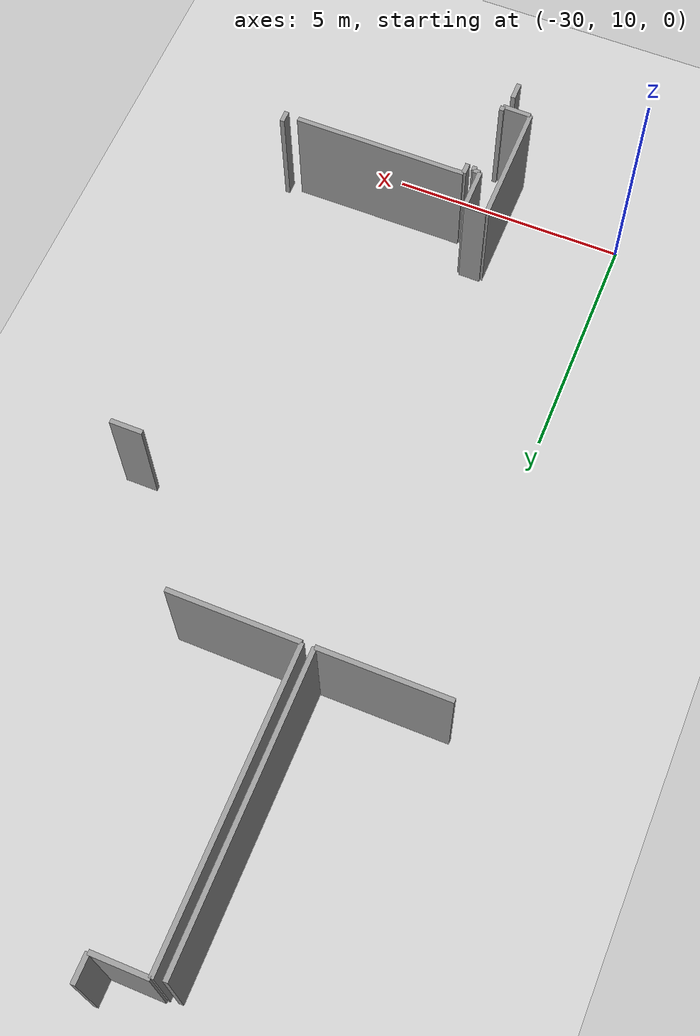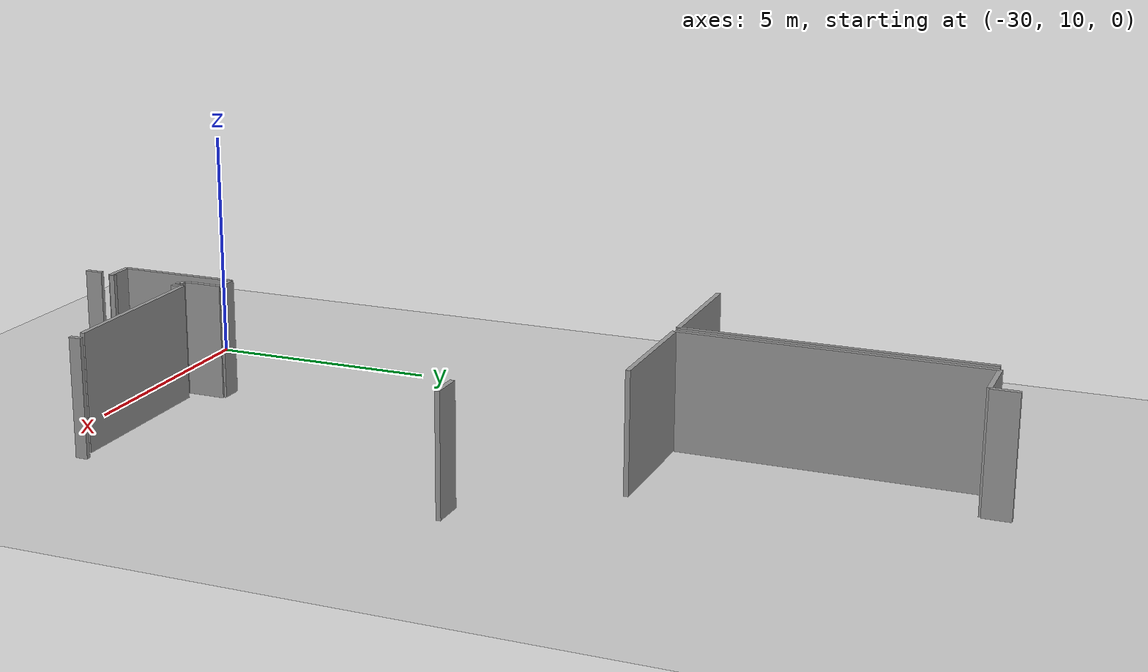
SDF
<sdf version="1.6">
 <world name="default">
  <model name="ground_plane">
   <static>1</static>
   <link name="link">
    <collision name="collision">
     <geometry><plane><normal>0 0 1</normal><size>100 100</size></plane></geometry>
     <surface><friction><ode><mu>100</mu><mu2>50</mu2></ode></friction></surface>
    </collision>
    <visual name="visual">
     <cast_shadows>0</cast_shadows>
     <geometry><plane><normal>0 0 1</normal><size>100 100</size></plane></geometry>
     <material>
      <script><uri>file://media/materials/scripts/gazebo.material</uri><name>Gazebo/Grey</name></script>
     </material>
    </visual>
   </link>
  </model>
  <model name="50045228">
   <static>1</static>
   <link name="Wall_8">
    <collision name="Wall_8_Collision">
     <geometry><box><size>0.684025244997 0.1 2.5</size></box></geometry>
     <pose>0.342012622498 0 1.25 0 0 0</pose>
    </collision>
    <visual name="Wall_8_Visual">
     <pose>0.342012622498 0 1.25 0 0 0</pose>
     <geometry><box><size>0.684025244997 0.1 2.5</size></box></geometry>
     <material>
      <script><uri>file://media/materials/scripts/gazebo.material</uri><name>Gazebo/Grey</name></script>
      <ambient>1 1 1 1</ambient>
     </material>
    </visual>
    <pose>23.7437442517 -9.68443753766 0 0 0 0.0</pose>
   </link>
   <link name="Wall_11">
    <collision name="Wall_11_Collision">
     <geometry><box><size>6.33408391741 0.1 2.5</size></box></geometry>
     <pose>3.16704195871 0 1.25 0 0 0</pose>
    </collision>
    <visual name="Wall_11_Visual">
     <pose>3.16704195871 0 1.25 0 0 0</pose>
     <geometry><box><size>6.33408391741 0.1 2.5</size></box></geometry>
     <material>
      <script><uri>file://media/materials/scripts/gazebo.material</uri><name>Gazebo/Grey</name></script>
      <ambient>1 1 1 1</ambient>
     </material>
    </visual>
    <pose>19.2568583299 -6.91535314452 0 0 0 1.57079632679</pose>
   </link>
   <link name="Wall_12">
    <collision name="Wall_12_Collision">
     <geometry><box><size>1.1470616219 0.1 2.5</size></box></geometry>
     <pose>0.573530810948 0 1.25 0 0 0</pose>
    </collision>
    <visual name="Wall_12_Visual">
     <pose>0.573530810948 0 1.25 0 0 0</pose>
     <geometry><box><size>1.1470616219 0.1 2.5</size></box></geometry>
     <material>
      <script><uri>file://media/materials/scripts/gazebo.material</uri><name>Gazebo/Grey</name></script>
      <ambient>1 1 1 1</ambient>
     </material>
    </visual>
    <pose>19.2568583299 -0.58126922711 0 0 0 0.0</pose>
   </link>
   <link name="Wall_13">
    <collision name="Wall_13_Collision">
     <geometry><box><size>0.575433700168 0.1 2.5</size></box></geometry>
     <pose>0.287716850084 0 1.25 0 0 0</pose>
    </collision>
    <visual name="Wall_13_Visual">
     <pose>0.287716850084 0 1.25 0 0 0</pose>
     <geometry><box><size>0.575433700168 0.1 2.5</size></box></geometry>
     <material>
      <script><uri>file://media/materials/scripts/gazebo.material</uri><name>Gazebo/Grey</name></script>
      <ambient>1 1 1 1</ambient>
     </material>
    </visual>
    <pose>20.4039199518 -0.58126922711 0 0 0 1.57079632679</pose>
   </link>
   <link name="Wall_18">
    <collision name="Wall_18_Collision">
     <geometry><box><size>2.71862399753 0.1 2.5</size></box></geometry>
     <pose>1.35931199876 0 1.25 0 0 0</pose>
    </collision>
    <visual name="Wall_18_Visual">
     <pose>1.35931199876 0 1.25 0 0 0</pose>
     <geometry><box><size>2.71862399753 0.1 2.5</size></box></geometry>
     <material>
      <script><uri>file://media/materials/scripts/gazebo.material</uri><name>Gazebo/Grey</name></script>
      <ambient>1 1 1 1</ambient>
     </material>
    </visual>
    <pose>21.9754527291 -6.92803907266 0 0 0 3.13692633188</pose>
   </link>
   <link name="Wall_24">
    <collision name="Wall_24_Collision">
     <geometry><box><size>6.30503314199 0.1 2.5</size></box></geometry>
     <pose>3.15251657099 0 1.25 0 0 0</pose>
    </collision>
    <visual name="Wall_24_Visual">
     <pose>3.15251657099 0 1.25 0 0 0</pose>
     <geometry><box><size>6.30503314199 0.1 2.5</size></box></geometry>
     <material>
      <script><uri>file://media/materials/scripts/gazebo.material</uri><name>Gazebo/Grey</name></script>
      <ambient>1 1 1 1</ambient>
     </material>
    </visual>
    <pose>19.0108781834 -0.614506358821 0 0 0 -1.57079632679</pose>
   </link>
   <link name="Wall_25">
    <collision name="Wall_25_Collision">
     <geometry><box><size>2.69664774349 0.1 2.5</size></box></geometry>
     <pose>1.34832387175 0 1.25 0 0 0</pose>
    </collision>
    <visual name="Wall_25_Visual">
     <pose>1.34832387175 0 1.25 0 0 0</pose>
     <geometry><box><size>2.69664774349 0.1 2.5</size></box></geometry>
     <material>
      <script><uri>file://media/materials/scripts/gazebo.material</uri><name>Gazebo/Grey</name></script>
      <ambient>1 1 1 1</ambient>
     </material>
    </visual>
    <pose>19.0108781834 -6.91953950081 0 0 0 3.14159265359</pose>
   </link>
   <link name="Wall_146">
    <collision name="Wall_146_Collision">
     <geometry><box><size>0.262598712378 0.1 2.5</size></box></geometry>
     <pose>0.131299356189 0 1.25 0 0 0</pose>
    </collision>
    <visual name="Wall_146_Visual">
     <pose>0.131299356189 0 1.25 0 0 0</pose>
     <geometry><box><size>0.262598712378 0.1 2.5</size></box></geometry>
     <material>
      <script><uri>file://media/materials/scripts/gazebo.material</uri><name>Gazebo/Grey</name></script>
      <ambient>1 1 1 1</ambient>
     </material>
    </visual>
    <pose>24.1986616346 -17.674669373 0 0 0 1.57079632679</pose>
   </link>
   <link name="Wall_403">
    <collision name="Wall_403_Collision">
     <geometry><box><size>0.253845421966 0.1 2.5</size></box></geometry>
     <pose>0.126922710983 0 1.25 0 0 0</pose>
    </collision>
    <visual name="Wall_403_Visual">
     <pose>0.126922710983 0 1.25 0 0 0</pose>
     <geometry><box><size>0.253845421966 0.1 2.5</size></box></geometry>
     <material>
      <script><uri>file://media/materials/scripts/gazebo.material</uri><name>Gazebo/Grey</name></script>
      <ambient>1 1 1 1</ambient>
     </material>
    </visual>
    <pose>20.2053851765 -17.8501157591 0 0 0 1.57079632679</pose>
   </link>
   <link name="Wall_404">
    <collision name="Wall_404_Collision">
     <geometry><box><size>3.70758935651 0.1 2.5</size></box></geometry>
     <pose>1.85379467825 0 1.25 0 0 0</pose>
    </collision>
    <visual name="Wall_404_Visual">
     <pose>1.85379467825 0 1.25 0 0 0</pose>
     <geometry><box><size>3.70758935651 0.1 2.5</size></box></geometry>
     <material>
      <script><uri>file://media/materials/scripts/gazebo.material</uri><name>Gazebo/Grey</name></script>
      <ambient>1 1 1 1</ambient>
     </material>
    </visual>
    <pose>20.2053851765 -17.5962703371 0 0 0 0.0</pose>
   </link>
   <link name="Wall_411">
    <collision name="Wall_411_Collision">
     <geometry><box><size>0.384383622467 0.1 2.5</size></box></geometry>
     <pose>0.192191811233 0 1.25 0 0 0</pose>
    </collision>
    <visual name="Wall_411_Visual">
     <pose>0.192191811233 0 1.25 0 0 0</pose>
     <geometry><box><size>0.384383622467 0.1 2.5</size></box></geometry>
     <material>
      <script><uri>file://media/materials/scripts/gazebo.material</uri><name>Gazebo/Grey</name></script>
      <ambient>1 1 1 1</ambient>
     </material>
    </visual>
    <pose>19.9264216168 -19.8012115061 0 0 0 -1.57079632679</pose>
   </link>
   <link name="Wall_428">
    <collision name="Wall_428_Collision">
     <geometry><box><size>2.63791189623 0.1 2.5</size></box></geometry>
     <pose>1.31895594811 0 1.25 0 0 0</pose>
    </collision>
    <visual name="Wall_428_Visual">
     <pose>1.31895594811 0 1.25 0 0 0</pose>
     <geometry><box><size>2.63791189623 0.1 2.5</size></box></geometry>
     <material>
      <script><uri>file://media/materials/scripts/gazebo.material</uri><name>Gazebo/Grey</name></script>
      <ambient>1 1 1 1</ambient>
     </material>
    </visual>
    <pose>19.4254543148 -19.4975103866 0 0 0 1.57079632679</pose>
   </link>
   <link name="Wall_429">
    <collision name="Wall_429_Collision">
     <geometry><box><size>0.470140496654 0.1 2.5</size></box></geometry>
     <pose>0.235070248327 0 1.25 0 0 0</pose>
    </collision>
    <visual name="Wall_429_Visual">
     <pose>0.235070248327 0 1.25 0 0 0</pose>
     <geometry><box><size>0.470140496654 0.1 2.5</size></box></geometry>
     <material>
      <script><uri>file://media/materials/scripts/gazebo.material</uri><name>Gazebo/Grey</name></script>
      <ambient>1 1 1 1</ambient>
     </material>
    </visual>
    <pose>19.4254543148 -16.8595984904 0 0 0 0.0</pose>
   </link>
   <link name="Wall_430">
    <collision name="Wall_430_Collision">
     <geometry><box><size>0.882560020297 0.1 2.5</size></box></geometry>
     <pose>0.441280010149 0 1.25 0 0 0</pose>
    </collision>
    <visual name="Wall_430_Visual">
     <pose>0.441280010149 0 1.25 0 0 0</pose>
     <geometry><box><size>0.882560020297 0.1 2.5</size></box></geometry>
     <material>
      <script><uri>file://media/materials/scripts/gazebo.material</uri><name>Gazebo/Grey</name></script>
      <ambient>1 1 1 1</ambient>
     </material>
    </visual>
    <pose>19.8955948115 -16.8595984904 0 0 0 -1.57079632679</pose>
   </link>
   <link name="Wall_431">
    <collision name="Wall_431_Collision">
     <geometry><box><size>0.143858425042 0.1 2.5</size></box></geometry>
     <pose>0.071929212521 0 1.25 0 0 0</pose>
    </collision>
    <visual name="Wall_431_Visual">
     <pose>0.071929212521 0 1.25 0 0 0</pose>
     <geometry><box><size>0.143858425042 0.1 2.5</size></box></geometry>
     <material>
      <script><uri>file://media/materials/scripts/gazebo.material</uri><name>Gazebo/Grey</name></script>
      <ambient>1 1 1 1</ambient>
     </material>
    </visual>
    <pose>19.8955948115 -17.7421585107 0 0 0 0.0</pose>
   </link>
   <link name="Wall_432">
    <collision name="Wall_432_Collision">
     <geometry><box><size>0.105420062795 0.1 2.5</size></box></geometry>
     <pose>0.0527100313977 0 1.25 0 0 0</pose>
    </collision>
    <visual name="Wall_432_Visual">
     <pose>0.0527100313977 0 1.25 0 0 0</pose>
     <geometry><box><size>0.105420062795 0.1 2.5</size></box></geometry>
     <material>
      <script><uri>file://media/materials/scripts/gazebo.material</uri><name>Gazebo/Grey</name></script>
      <ambient>1 1 1 1</ambient>
     </material>
    </visual>
    <pose>20.0394532365 -17.7421585107 0 0 0 -1.57079632679</pose>
   </link>
   <link name="Wall_433">
    <collision name="Wall_433_Collision">
     <geometry><box><size>0.116076242428 0.1 2.5</size></box></geometry>
     <pose>0.058038121214 0 1.25 0 0 0</pose>
    </collision>
    <visual name="Wall_433_Visual">
     <pose>0.058038121214 0 1.25 0 0 0</pose>
     <geometry><box><size>0.116076242428 0.1 2.5</size></box></geometry>
     <material>
      <script><uri>file://media/materials/scripts/gazebo.material</uri><name>Gazebo/Grey</name></script>
      <ambient>1 1 1 1</ambient>
     </material>
    </visual>
    <pose>20.0394532365 -19.3950080873 0 0 0 -1.57079632679</pose>
   </link>
   <link name="Wall_434">
    <collision name="Wall_434_Collision">
     <geometry><box><size>0.614148945921 0.1 2.5</size></box></geometry>
     <pose>0.30707447296 0 1.25 0 0 0</pose>
    </collision>
    <visual name="Wall_434_Visual">
     <pose>0.30707447296 0 1.25 0 0 0</pose>
     <geometry><box><size>0.614148945921 0.1 2.5</size></box></geometry>
     <material>
      <script><uri>file://media/materials/scripts/gazebo.material</uri><name>Gazebo/Grey</name></script>
      <ambient>1 1 1 1</ambient>
     </material>
    </visual>
    <pose>20.0394532365 -19.5110843297 0 0 0 3.11948881611</pose>
   </link>
   <pose>-46.9 28.5754781009 0 0 0 0</pose>
  </model>
 </world>
</sdf>
